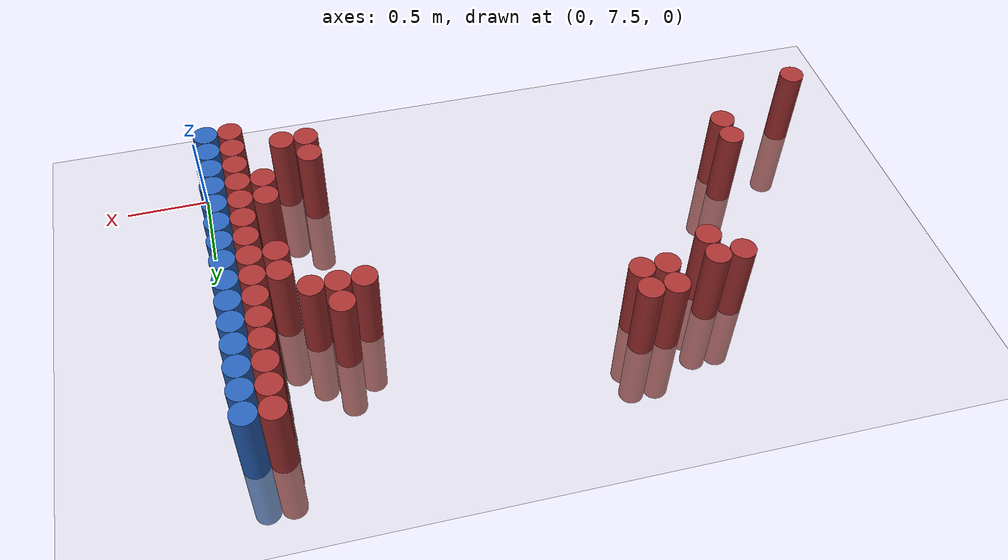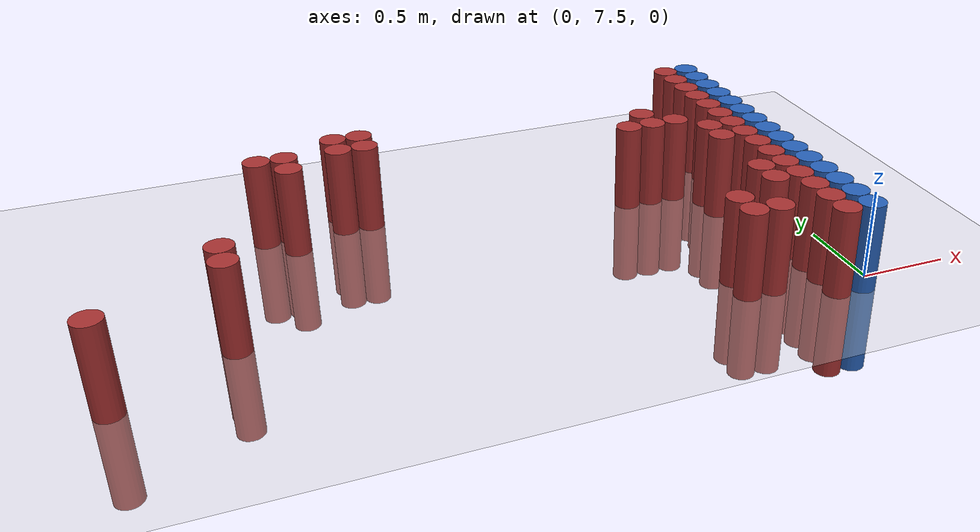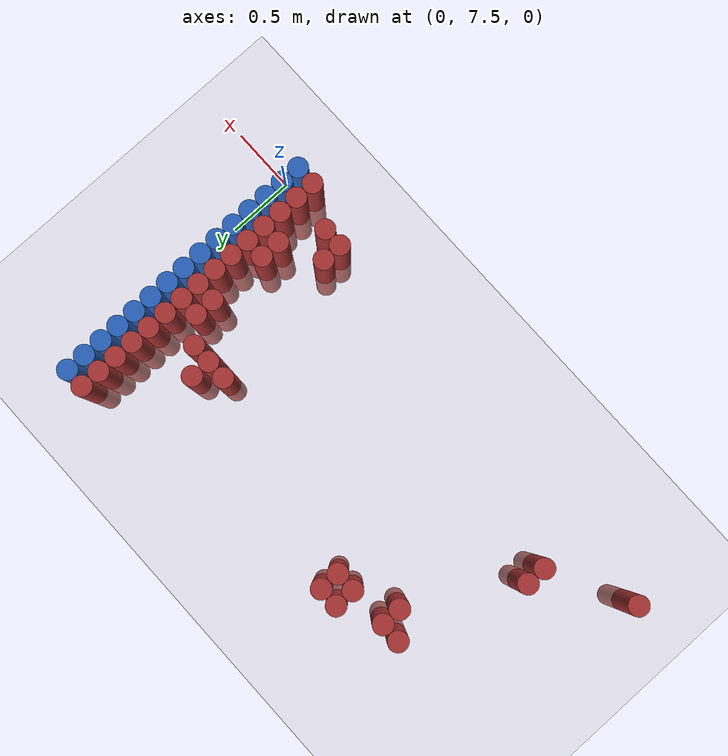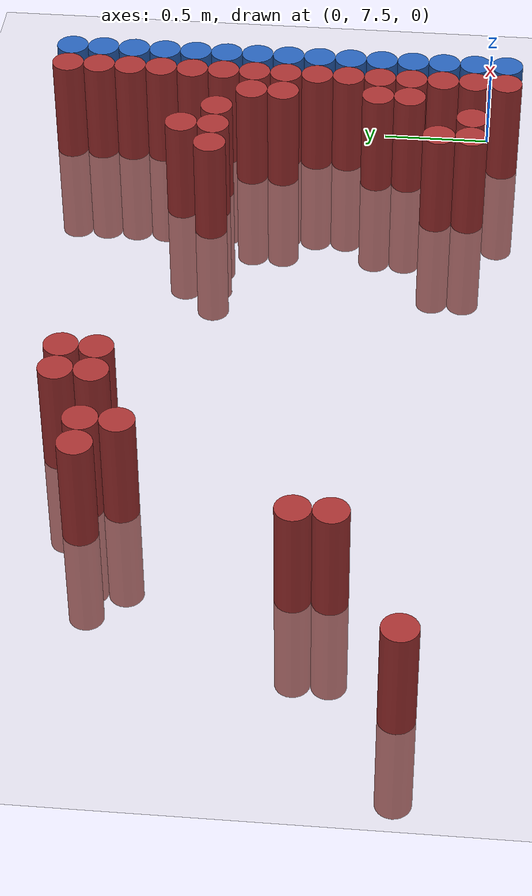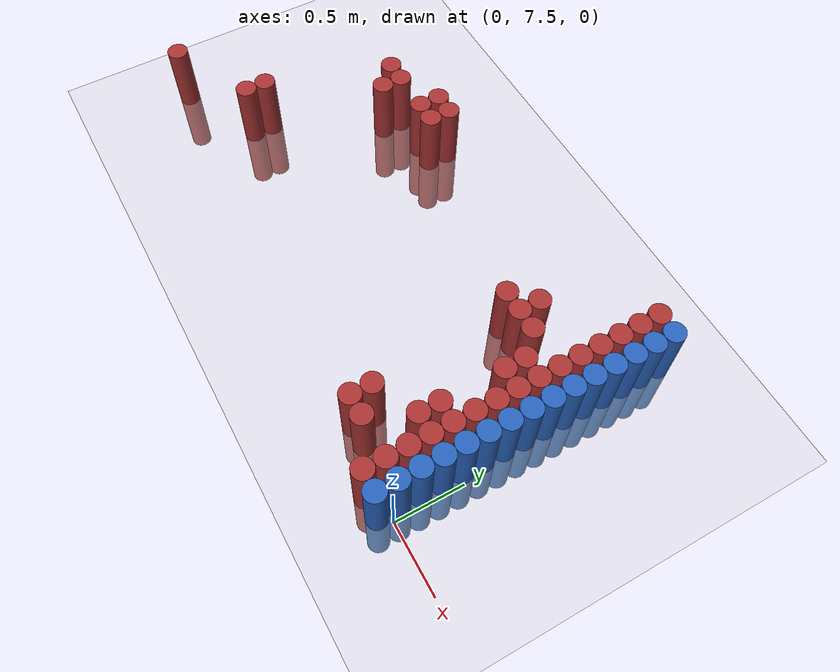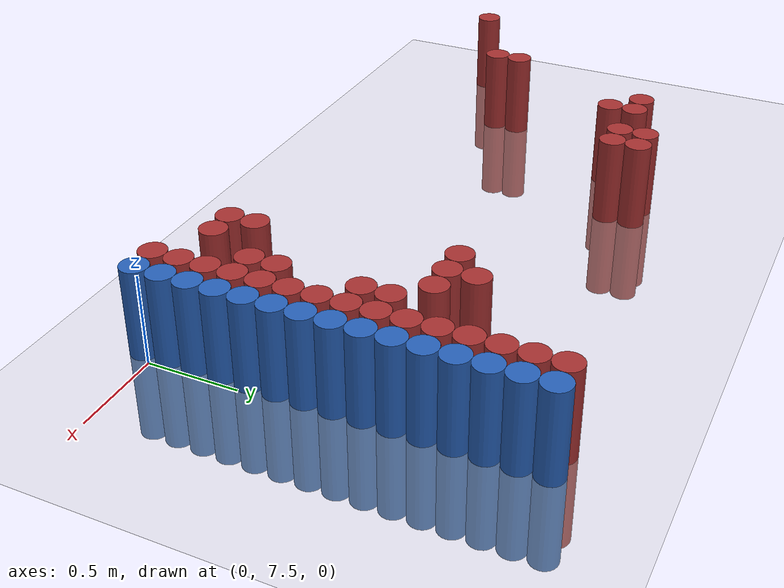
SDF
<sdf version="1.6">
 <world name="default">
  <model name="ground_plane">
   <static>1</static>
   <link name="link">
    <collision name="collision">
     <geometry><plane><normal>0 0 1</normal><size>100 100</size></plane></geometry>
     <surface><friction><ode><mu>100</mu><mu2>50</mu2></ode></friction></surface>
    </collision>
    <visual name="visual">
     <cast_shadows>0</cast_shadows>
     <geometry><plane><normal>0 0 1</normal><size>100 100</size></plane></geometry>
     <material>
      <script><uri>file://media/materials/scripts/gazebo.material</uri><name>Gazebo/Grey</name></script>
     </material>
    </visual>
   </link>
  </model>
  <model name="unit_cylinder_155">
   <static>1</static>
   <pose>-3.825000 7.725000 0.000000 0.000000 0.000000 0.000000</pose>
   <link name="link">
    <inertial>
     <mass>1</mass>
     <inertia><ixx>0.145833</ixx><ixy>0</ixy><ixz>0</ixz><iyy>0.145833</iyy><iyz>0</iyz><izz>0.125</izz></inertia>
    </inertial>
    <collision name="collision">
     <geometry><cylinder><radius>0.075000</radius><length>1</length></cylinder></geometry>
    </collision>
    <visual name="visual">
     <geometry><cylinder><radius>0.075000</radius><length>1</length></cylinder></geometry>
     <material>
      <ambient>0.648000 0.192000 0.192000 1</ambient>
      <diffuse>0.648000 0.192000 0.192000 1</diffuse>
     </material>
     <material>
      <script><name>Gazebo/Grey</name><uri>file://media/materials/scripts/gazebo.material</uri></script>
     </material>
    </visual>
   </link>
  </model>
  <model name="unit_cylinder_169">
   <static>1</static>
   <pose>-3.225000 8.025000 0.000000 0.000000 0.000000 0.000000</pose>
   <link name="link">
    <inertial>
     <mass>1</mass>
     <inertia><ixx>0.145833</ixx><ixy>0</ixy><ixz>0</ixz><iyy>0.145833</iyy><iyz>0</iyz><izz>0.125</izz></inertia>
    </inertial>
    <collision name="collision">
     <geometry><cylinder><radius>0.075000</radius><length>1</length></cylinder></geometry>
    </collision>
    <visual name="visual">
     <geometry><cylinder><radius>0.075000</radius><length>1</length></cylinder></geometry>
     <material>
      <ambient>0.648000 0.192000 0.192000 1</ambient>
      <diffuse>0.648000 0.192000 0.192000 1</diffuse>
     </material>
     <material>
      <script><name>Gazebo/Grey</name><uri>file://media/materials/scripts/gazebo.material</uri></script>
     </material>
    </visual>
   </link>
  </model>
  <model name="unit_cylinder_170">
   <static>1</static>
   <pose>-3.225000 8.175000 0.000000 0.000000 0.000000 0.000000</pose>
   <link name="link">
    <inertial>
     <mass>1</mass>
     <inertia><ixx>0.145833</ixx><ixy>0</ixy><ixz>0</ixz><iyy>0.145833</iyy><iyz>0</iyz><izz>0.125</izz></inertia>
    </inertial>
    <collision name="collision">
     <geometry><cylinder><radius>0.075000</radius><length>1</length></cylinder></geometry>
    </collision>
    <visual name="visual">
     <geometry><cylinder><radius>0.075000</radius><length>1</length></cylinder></geometry>
     <material>
      <ambient>0.648000 0.192000 0.192000 1</ambient>
      <diffuse>0.648000 0.192000 0.192000 1</diffuse>
     </material>
     <material>
      <script><name>Gazebo/Grey</name><uri>file://media/materials/scripts/gazebo.material</uri></script>
     </material>
    </visual>
   </link>
  </model>
  <model name="unit_cylinder_172">
   <static>1</static>
   <pose>-2.925000 9.075000 0.000000 0.000000 0.000000 0.000000</pose>
   <link name="link">
    <inertial>
     <mass>1</mass>
     <inertia><ixx>0.145833</ixx><ixy>0</ixy><ixz>0</ixz><iyy>0.145833</iyy><iyz>0</iyz><izz>0.125</izz></inertia>
    </inertial>
    <collision name="collision">
     <geometry><cylinder><radius>0.075000</radius><length>1</length></cylinder></geometry>
    </collision>
    <visual name="visual">
     <geometry><cylinder><radius>0.075000</radius><length>1</length></cylinder></geometry>
     <material>
      <ambient>0.648000 0.192000 0.192000 1</ambient>
      <diffuse>0.648000 0.192000 0.192000 1</diffuse>
     </material>
     <material>
      <script><name>Gazebo/Grey</name><uri>file://media/materials/scripts/gazebo.material</uri></script>
     </material>
    </visual>
   </link>
  </model>
  <model name="unit_cylinder_173">
   <static>1</static>
   <pose>-2.775000 8.925000 0.000000 0.000000 0.000000 0.000000</pose>
   <link name="link">
    <inertial>
     <mass>1</mass>
     <inertia><ixx>0.145833</ixx><ixy>0</ixy><ixz>0</ixz><iyy>0.145833</iyy><iyz>0</iyz><izz>0.125</izz></inertia>
    </inertial>
    <collision name="collision">
     <geometry><cylinder><radius>0.075000</radius><length>1</length></cylinder></geometry>
    </collision>
    <visual name="visual">
     <geometry><cylinder><radius>0.075000</radius><length>1</length></cylinder></geometry>
     <material>
      <ambient>0.648000 0.192000 0.192000 1</ambient>
      <diffuse>0.648000 0.192000 0.192000 1</diffuse>
     </material>
     <material>
      <script><name>Gazebo/Grey</name><uri>file://media/materials/scripts/gazebo.material</uri></script>
     </material>
    </visual>
   </link>
  </model>
  <model name="unit_cylinder_174">
   <static>1</static>
   <pose>-2.775000 9.075000 0.000000 0.000000 0.000000 0.000000</pose>
   <link name="link">
    <inertial>
     <mass>1</mass>
     <inertia><ixx>0.145833</ixx><ixy>0</ixy><ixz>0</ixz><iyy>0.145833</iyy><iyz>0</iyz><izz>0.125</izz></inertia>
    </inertial>
    <collision name="collision">
     <geometry><cylinder><radius>0.075000</radius><length>1</length></cylinder></geometry>
    </collision>
    <visual name="visual">
     <geometry><cylinder><radius>0.075000</radius><length>1</length></cylinder></geometry>
     <material>
      <ambient>0.648000 0.192000 0.192000 1</ambient>
      <diffuse>0.648000 0.192000 0.192000 1</diffuse>
     </material>
     <material>
      <script><name>Gazebo/Grey</name><uri>file://media/materials/scripts/gazebo.material</uri></script>
     </material>
    </visual>
   </link>
  </model>
  <model name="unit_cylinder_176">
   <static>1</static>
   <pose>-2.475000 9.075000 0.000000 0.000000 0.000000 0.000000</pose>
   <link name="link">
    <inertial>
     <mass>1</mass>
     <inertia><ixx>0.145833</ixx><ixy>0</ixy><ixz>0</ixz><iyy>0.145833</iyy><iyz>0</iyz><izz>0.125</izz></inertia>
    </inertial>
    <collision name="collision">
     <geometry><cylinder><radius>0.075000</radius><length>1</length></cylinder></geometry>
    </collision>
    <visual name="visual">
     <geometry><cylinder><radius>0.075000</radius><length>1</length></cylinder></geometry>
     <material>
      <ambient>0.648000 0.192000 0.192000 1</ambient>
      <diffuse>0.648000 0.192000 0.192000 1</diffuse>
     </material>
     <material>
      <script><name>Gazebo/Grey</name><uri>file://media/materials/scripts/gazebo.material</uri></script>
     </material>
    </visual>
   </link>
  </model>
  <model name="unit_cylinder_177">
   <static>1</static>
   <pose>-2.475000 9.225000 0.000000 0.000000 0.000000 0.000000</pose>
   <link name="link">
    <inertial>
     <mass>1</mass>
     <inertia><ixx>0.145833</ixx><ixy>0</ixy><ixz>0</ixz><iyy>0.145833</iyy><iyz>0</iyz><izz>0.125</izz></inertia>
    </inertial>
    <collision name="collision">
     <geometry><cylinder><radius>0.075000</radius><length>1</length></cylinder></geometry>
    </collision>
    <visual name="visual">
     <geometry><cylinder><radius>0.075000</radius><length>1</length></cylinder></geometry>
     <material>
      <ambient>0.648000 0.192000 0.192000 1</ambient>
      <diffuse>0.648000 0.192000 0.192000 1</diffuse>
     </material>
     <material>
      <script><name>Gazebo/Grey</name><uri>file://media/materials/scripts/gazebo.material</uri></script>
     </material>
    </visual>
   </link>
  </model>
  <model name="unit_cylinder_178">
   <static>1</static>
   <pose>-2.325000 9.075000 0.000000 0.000000 0.000000 0.000000</pose>
   <link name="link">
    <inertial>
     <mass>1</mass>
     <inertia><ixx>0.145833</ixx><ixy>0</ixy><ixz>0</ixz><iyy>0.145833</iyy><iyz>0</iyz><izz>0.125</izz></inertia>
    </inertial>
    <collision name="collision">
     <geometry><cylinder><radius>0.075000</radius><length>1</length></cylinder></geometry>
    </collision>
    <visual name="visual">
     <geometry><cylinder><radius>0.075000</radius><length>1</length></cylinder></geometry>
     <material>
      <ambient>0.648000 0.192000 0.192000 1</ambient>
      <diffuse>0.648000 0.192000 0.192000 1</diffuse>
     </material>
     <material>
      <script><name>Gazebo/Grey</name><uri>file://media/materials/scripts/gazebo.material</uri></script>
     </material>
    </visual>
   </link>
  </model>
  <model name="unit_cylinder_179">
   <static>1</static>
   <pose>-2.325000 9.225000 0.000000 0.000000 0.000000 0.000000</pose>
   <link name="link">
    <inertial>
     <mass>1</mass>
     <inertia><ixx>0.145833</ixx><ixy>0</ixy><ixz>0</ixz><iyy>0.145833</iyy><iyz>0</iyz><izz>0.125</izz></inertia>
    </inertial>
    <collision name="collision">
     <geometry><cylinder><radius>0.075000</radius><length>1</length></cylinder></geometry>
    </collision>
    <visual name="visual">
     <geometry><cylinder><radius>0.075000</radius><length>1</length></cylinder></geometry>
     <material>
      <ambient>0.648000 0.192000 0.192000 1</ambient>
      <diffuse>0.648000 0.192000 0.192000 1</diffuse>
     </material>
     <material>
      <script><name>Gazebo/Grey</name><uri>file://media/materials/scripts/gazebo.material</uri></script>
     </material>
    </visual>
   </link>
  </model>
  <model name="unit_cylinder_189">
   <static>1</static>
   <pose>-0.825000 8.775000 0.000000 0.000000 0.000000 0.000000</pose>
   <link name="link">
    <inertial>
     <mass>1</mass>
     <inertia><ixx>0.145833</ixx><ixy>0</ixy><ixz>0</ixz><iyy>0.145833</iyy><iyz>0</iyz><izz>0.125</izz></inertia>
    </inertial>
    <collision name="collision">
     <geometry><cylinder><radius>0.075000</radius><length>1</length></cylinder></geometry>
    </collision>
    <visual name="visual">
     <geometry><cylinder><radius>0.075000</radius><length>1</length></cylinder></geometry>
     <material>
      <ambient>0.648000 0.192000 0.192000 1</ambient>
      <diffuse>0.648000 0.192000 0.192000 1</diffuse>
     </material>
     <material>
      <script><name>Gazebo/Grey</name><uri>file://media/materials/scripts/gazebo.material</uri></script>
     </material>
    </visual>
   </link>
  </model>
  <model name="unit_cylinder_190">
   <static>1</static>
   <pose>-0.675000 7.575000 0.000000 0.000000 0.000000 0.000000</pose>
   <link name="link">
    <inertial>
     <mass>1</mass>
     <inertia><ixx>0.145833</ixx><ixy>0</ixy><ixz>0</ixz><iyy>0.145833</iyy><iyz>0</iyz><izz>0.125</izz></inertia>
    </inertial>
    <collision name="collision">
     <geometry><cylinder><radius>0.075000</radius><length>1</length></cylinder></geometry>
    </collision>
    <visual name="visual">
     <geometry><cylinder><radius>0.075000</radius><length>1</length></cylinder></geometry>
     <material>
      <ambient>0.648000 0.192000 0.192000 1</ambient>
      <diffuse>0.648000 0.192000 0.192000 1</diffuse>
     </material>
     <material>
      <script><name>Gazebo/Grey</name><uri>file://media/materials/scripts/gazebo.material</uri></script>
     </material>
    </visual>
   </link>
  </model>
  <model name="unit_cylinder_191">
   <static>1</static>
   <pose>-0.675000 7.725000 0.000000 0.000000 0.000000 0.000000</pose>
   <link name="link">
    <inertial>
     <mass>1</mass>
     <inertia><ixx>0.145833</ixx><ixy>0</ixy><ixz>0</ixz><iyy>0.145833</iyy><iyz>0</iyz><izz>0.125</izz></inertia>
    </inertial>
    <collision name="collision">
     <geometry><cylinder><radius>0.075000</radius><length>1</length></cylinder></geometry>
    </collision>
    <visual name="visual">
     <geometry><cylinder><radius>0.075000</radius><length>1</length></cylinder></geometry>
     <material>
      <ambient>0.648000 0.192000 0.192000 1</ambient>
      <diffuse>0.648000 0.192000 0.192000 1</diffuse>
     </material>
     <material>
      <script><name>Gazebo/Grey</name><uri>file://media/materials/scripts/gazebo.material</uri></script>
     </material>
    </visual>
   </link>
  </model>
  <model name="unit_cylinder_192">
   <static>1</static>
   <pose>-0.675000 8.775000 0.000000 0.000000 0.000000 0.000000</pose>
   <link name="link">
    <inertial>
     <mass>1</mass>
     <inertia><ixx>0.145833</ixx><ixy>0</ixy><ixz>0</ixz><iyy>0.145833</iyy><iyz>0</iyz><izz>0.125</izz></inertia>
    </inertial>
    <collision name="collision">
     <geometry><cylinder><radius>0.075000</radius><length>1</length></cylinder></geometry>
    </collision>
    <visual name="visual">
     <geometry><cylinder><radius>0.075000</radius><length>1</length></cylinder></geometry>
     <material>
      <ambient>0.648000 0.192000 0.192000 1</ambient>
      <diffuse>0.648000 0.192000 0.192000 1</diffuse>
     </material>
     <material>
      <script><name>Gazebo/Grey</name><uri>file://media/materials/scripts/gazebo.material</uri></script>
     </material>
    </visual>
   </link>
  </model>
  <model name="unit_cylinder_193">
   <static>1</static>
   <pose>-0.675000 8.925000 0.000000 0.000000 0.000000 0.000000</pose>
   <link name="link">
    <inertial>
     <mass>1</mass>
     <inertia><ixx>0.145833</ixx><ixy>0</ixy><ixz>0</ixz><iyy>0.145833</iyy><iyz>0</iyz><izz>0.125</izz></inertia>
    </inertial>
    <collision name="collision">
     <geometry><cylinder><radius>0.075000</radius><length>1</length></cylinder></geometry>
    </collision>
    <visual name="visual">
     <geometry><cylinder><radius>0.075000</radius><length>1</length></cylinder></geometry>
     <material>
      <ambient>0.648000 0.192000 0.192000 1</ambient>
      <diffuse>0.648000 0.192000 0.192000 1</diffuse>
     </material>
     <material>
      <script><name>Gazebo/Grey</name><uri>file://media/materials/scripts/gazebo.material</uri></script>
     </material>
    </visual>
   </link>
  </model>
  <model name="unit_cylinder_194">
   <static>1</static>
   <pose>-0.525000 7.575000 0.000000 0.000000 0.000000 0.000000</pose>
   <link name="link">
    <inertial>
     <mass>1</mass>
     <inertia><ixx>0.145833</ixx><ixy>0</ixy><ixz>0</ixz><iyy>0.145833</iyy><iyz>0</iyz><izz>0.125</izz></inertia>
    </inertial>
    <collision name="collision">
     <geometry><cylinder><radius>0.075000</radius><length>1</length></cylinder></geometry>
    </collision>
    <visual name="visual">
     <geometry><cylinder><radius>0.075000</radius><length>1</length></cylinder></geometry>
     <material>
      <ambient>0.648000 0.192000 0.192000 1</ambient>
      <diffuse>0.648000 0.192000 0.192000 1</diffuse>
     </material>
     <material>
      <script><name>Gazebo/Grey</name><uri>file://media/materials/scripts/gazebo.material</uri></script>
     </material>
    </visual>
   </link>
  </model>
  <model name="unit_cylinder_195">
   <static>1</static>
   <pose>-0.525000 8.775000 0.000000 0.000000 0.000000 0.000000</pose>
   <link name="link">
    <inertial>
     <mass>1</mass>
     <inertia><ixx>0.145833</ixx><ixy>0</ixy><ixz>0</ixz><iyy>0.145833</iyy><iyz>0</iyz><izz>0.125</izz></inertia>
    </inertial>
    <collision name="collision">
     <geometry><cylinder><radius>0.075000</radius><length>1</length></cylinder></geometry>
    </collision>
    <visual name="visual">
     <geometry><cylinder><radius>0.075000</radius><length>1</length></cylinder></geometry>
     <material>
      <ambient>0.648000 0.192000 0.192000 1</ambient>
      <diffuse>0.648000 0.192000 0.192000 1</diffuse>
     </material>
     <material>
      <script><name>Gazebo/Grey</name><uri>file://media/materials/scripts/gazebo.material</uri></script>
     </material>
    </visual>
   </link>
  </model>
  <model name="unit_cylinder_197">
   <static>1</static>
   <pose>-0.375000 7.875000 0.000000 0.000000 0.000000 0.000000</pose>
   <link name="link">
    <inertial>
     <mass>1</mass>
     <inertia><ixx>0.145833</ixx><ixy>0</ixy><ixz>0</ixz><iyy>0.145833</iyy><iyz>0</iyz><izz>0.125</izz></inertia>
    </inertial>
    <collision name="collision">
     <geometry><cylinder><radius>0.075000</radius><length>1</length></cylinder></geometry>
    </collision>
    <visual name="visual">
     <geometry><cylinder><radius>0.075000</radius><length>1</length></cylinder></geometry>
     <material>
      <ambient>0.648000 0.192000 0.192000 1</ambient>
      <diffuse>0.648000 0.192000 0.192000 1</diffuse>
     </material>
     <material>
      <script><name>Gazebo/Grey</name><uri>file://media/materials/scripts/gazebo.material</uri></script>
     </material>
    </visual>
   </link>
  </model>
  <model name="unit_cylinder_198">
   <static>1</static>
   <pose>-0.375000 8.025000 0.000000 0.000000 0.000000 0.000000</pose>
   <link name="link">
    <inertial>
     <mass>1</mass>
     <inertia><ixx>0.145833</ixx><ixy>0</ixy><ixz>0</ixz><iyy>0.145833</iyy><iyz>0</iyz><izz>0.125</izz></inertia>
    </inertial>
    <collision name="collision">
     <geometry><cylinder><radius>0.075000</radius><length>1</length></cylinder></geometry>
    </collision>
    <visual name="visual">
     <geometry><cylinder><radius>0.075000</radius><length>1</length></cylinder></geometry>
     <material>
      <ambient>0.648000 0.192000 0.192000 1</ambient>
      <diffuse>0.648000 0.192000 0.192000 1</diffuse>
     </material>
     <material>
      <script><name>Gazebo/Grey</name><uri>file://media/materials/scripts/gazebo.material</uri></script>
     </material>
    </visual>
   </link>
  </model>
  <model name="unit_cylinder_199">
   <static>1</static>
   <pose>-0.375000 8.475000 0.000000 0.000000 0.000000 0.000000</pose>
   <link name="link">
    <inertial>
     <mass>1</mass>
     <inertia><ixx>0.145833</ixx><ixy>0</ixy><ixz>0</ixz><iyy>0.145833</iyy><iyz>0</iyz><izz>0.125</izz></inertia>
    </inertial>
    <collision name="collision">
     <geometry><cylinder><radius>0.075000</radius><length>1</length></cylinder></geometry>
    </collision>
    <visual name="visual">
     <geometry><cylinder><radius>0.075000</radius><length>1</length></cylinder></geometry>
     <material>
      <ambient>0.648000 0.192000 0.192000 1</ambient>
      <diffuse>0.648000 0.192000 0.192000 1</diffuse>
     </material>
     <material>
      <script><name>Gazebo/Grey</name><uri>file://media/materials/scripts/gazebo.material</uri></script>
     </material>
    </visual>
   </link>
  </model>
  <model name="unit_cylinder_200">
   <static>1</static>
   <pose>-0.375000 8.625000 0.000000 0.000000 0.000000 0.000000</pose>
   <link name="link">
    <inertial>
     <mass>1</mass>
     <inertia><ixx>0.145833</ixx><ixy>0</ixy><ixz>0</ixz><iyy>0.145833</iyy><iyz>0</iyz><izz>0.125</izz></inertia>
    </inertial>
    <collision name="collision">
     <geometry><cylinder><radius>0.075000</radius><length>1</length></cylinder></geometry>
    </collision>
    <visual name="visual">
     <geometry><cylinder><radius>0.075000</radius><length>1</length></cylinder></geometry>
     <material>
      <ambient>0.648000 0.192000 0.192000 1</ambient>
      <diffuse>0.648000 0.192000 0.192000 1</diffuse>
     </material>
     <material>
      <script><name>Gazebo/Grey</name><uri>file://media/materials/scripts/gazebo.material</uri></script>
     </material>
    </visual>
   </link>
  </model>
  <model name="unit_cylinder_210">
   <static>1</static>
   <pose>-0.225000 7.425000 0.000000 0.000000 0.000000 0.000000</pose>
   <link name="link">
    <inertial>
     <mass>1</mass>
     <inertia><ixx>0.145833</ixx><ixy>0</ixy><ixz>0</ixz><iyy>0.145833</iyy><iyz>0</iyz><izz>0.125</izz></inertia>
    </inertial>
    <collision name="collision">
     <geometry><cylinder><radius>0.075000</radius><length>1</length></cylinder></geometry>
    </collision>
    <visual name="visual">
     <geometry><cylinder><radius>0.075000</radius><length>1</length></cylinder></geometry>
     <material>
      <ambient>0.648000 0.192000 0.192000 1</ambient>
      <diffuse>0.648000 0.192000 0.192000 1</diffuse>
     </material>
     <material>
      <script><name>Gazebo/Grey</name><uri>file://media/materials/scripts/gazebo.material</uri></script>
     </material>
    </visual>
   </link>
  </model>
  <model name="unit_cylinder_211">
   <static>1</static>
   <pose>-0.225000 7.575000 0.000000 0.000000 0.000000 0.000000</pose>
   <link name="link">
    <inertial>
     <mass>1</mass>
     <inertia><ixx>0.145833</ixx><ixy>0</ixy><ixz>0</ixz><iyy>0.145833</iyy><iyz>0</iyz><izz>0.125</izz></inertia>
    </inertial>
    <collision name="collision">
     <geometry><cylinder><radius>0.075000</radius><length>1</length></cylinder></geometry>
    </collision>
    <visual name="visual">
     <geometry><cylinder><radius>0.075000</radius><length>1</length></cylinder></geometry>
     <material>
      <ambient>0.648000 0.192000 0.192000 1</ambient>
      <diffuse>0.648000 0.192000 0.192000 1</diffuse>
     </material>
     <material>
      <script><name>Gazebo/Grey</name><uri>file://media/materials/scripts/gazebo.material</uri></script>
     </material>
    </visual>
   </link>
  </model>
  <model name="unit_cylinder_212">
   <static>1</static>
   <pose>-0.225000 7.725000 0.000000 0.000000 0.000000 0.000000</pose>
   <link name="link">
    <inertial>
     <mass>1</mass>
     <inertia><ixx>0.145833</ixx><ixy>0</ixy><ixz>0</ixz><iyy>0.145833</iyy><iyz>0</iyz><izz>0.125</izz></inertia>
    </inertial>
    <collision name="collision">
     <geometry><cylinder><radius>0.075000</radius><length>1</length></cylinder></geometry>
    </collision>
    <visual name="visual">
     <geometry><cylinder><radius>0.075000</radius><length>1</length></cylinder></geometry>
     <material>
      <ambient>0.648000 0.192000 0.192000 1</ambient>
      <diffuse>0.648000 0.192000 0.192000 1</diffuse>
     </material>
     <material>
      <script><name>Gazebo/Grey</name><uri>file://media/materials/scripts/gazebo.material</uri></script>
     </material>
    </visual>
   </link>
  </model>
  <model name="unit_cylinder_213">
   <static>1</static>
   <pose>-0.225000 7.875000 0.000000 0.000000 0.000000 0.000000</pose>
   <link name="link">
    <inertial>
     <mass>1</mass>
     <inertia><ixx>0.145833</ixx><ixy>0</ixy><ixz>0</ixz><iyy>0.145833</iyy><iyz>0</iyz><izz>0.125</izz></inertia>
    </inertial>
    <collision name="collision">
     <geometry><cylinder><radius>0.075000</radius><length>1</length></cylinder></geometry>
    </collision>
    <visual name="visual">
     <geometry><cylinder><radius>0.075000</radius><length>1</length></cylinder></geometry>
     <material>
      <ambient>0.648000 0.192000 0.192000 1</ambient>
      <diffuse>0.648000 0.192000 0.192000 1</diffuse>
     </material>
     <material>
      <script><name>Gazebo/Grey</name><uri>file://media/materials/scripts/gazebo.material</uri></script>
     </material>
    </visual>
   </link>
  </model>
  <model name="unit_cylinder_214">
   <static>1</static>
   <pose>-0.225000 8.025000 0.000000 0.000000 0.000000 0.000000</pose>
   <link name="link">
    <inertial>
     <mass>1</mass>
     <inertia><ixx>0.145833</ixx><ixy>0</ixy><ixz>0</ixz><iyy>0.145833</iyy><iyz>0</iyz><izz>0.125</izz></inertia>
    </inertial>
    <collision name="collision">
     <geometry><cylinder><radius>0.075000</radius><length>1</length></cylinder></geometry>
    </collision>
    <visual name="visual">
     <geometry><cylinder><radius>0.075000</radius><length>1</length></cylinder></geometry>
     <material>
      <ambient>0.648000 0.192000 0.192000 1</ambient>
      <diffuse>0.648000 0.192000 0.192000 1</diffuse>
     </material>
     <material>
      <script><name>Gazebo/Grey</name><uri>file://media/materials/scripts/gazebo.material</uri></script>
     </material>
    </visual>
   </link>
  </model>
  <model name="unit_cylinder_215">
   <static>1</static>
   <pose>-0.225000 8.175000 0.000000 0.000000 0.000000 0.000000</pose>
   <link name="link">
    <inertial>
     <mass>1</mass>
     <inertia><ixx>0.145833</ixx><ixy>0</ixy><ixz>0</ixz><iyy>0.145833</iyy><iyz>0</iyz><izz>0.125</izz></inertia>
    </inertial>
    <collision name="collision">
     <geometry><cylinder><radius>0.075000</radius><length>1</length></cylinder></geometry>
    </collision>
    <visual name="visual">
     <geometry><cylinder><radius>0.075000</radius><length>1</length></cylinder></geometry>
     <material>
      <ambient>0.648000 0.192000 0.192000 1</ambient>
      <diffuse>0.648000 0.192000 0.192000 1</diffuse>
     </material>
     <material>
      <script><name>Gazebo/Grey</name><uri>file://media/materials/scripts/gazebo.material</uri></script>
     </material>
    </visual>
   </link>
  </model>
  <model name="unit_cylinder_216">
   <static>1</static>
   <pose>-0.225000 8.325000 0.000000 0.000000 0.000000 0.000000</pose>
   <link name="link">
    <inertial>
     <mass>1</mass>
     <inertia><ixx>0.145833</ixx><ixy>0</ixy><ixz>0</ixz><iyy>0.145833</iyy><iyz>0</iyz><izz>0.125</izz></inertia>
    </inertial>
    <collision name="collision">
     <geometry><cylinder><radius>0.075000</radius><length>1</length></cylinder></geometry>
    </collision>
    <visual name="visual">
     <geometry><cylinder><radius>0.075000</radius><length>1</length></cylinder></geometry>
     <material>
      <ambient>0.648000 0.192000 0.192000 1</ambient>
      <diffuse>0.648000 0.192000 0.192000 1</diffuse>
     </material>
     <material>
      <script><name>Gazebo/Grey</name><uri>file://media/materials/scripts/gazebo.material</uri></script>
     </material>
    </visual>
   </link>
  </model>
  <model name="unit_cylinder_217">
   <static>1</static>
   <pose>-0.225000 8.475000 0.000000 0.000000 0.000000 0.000000</pose>
   <link name="link">
    <inertial>
     <mass>1</mass>
     <inertia><ixx>0.145833</ixx><ixy>0</ixy><ixz>0</ixz><iyy>0.145833</iyy><iyz>0</iyz><izz>0.125</izz></inertia>
    </inertial>
    <collision name="collision">
     <geometry><cylinder><radius>0.075000</radius><length>1</length></cylinder></geometry>
    </collision>
    <visual name="visual">
     <geometry><cylinder><radius>0.075000</radius><length>1</length></cylinder></geometry>
     <material>
      <ambient>0.648000 0.192000 0.192000 1</ambient>
      <diffuse>0.648000 0.192000 0.192000 1</diffuse>
     </material>
     <material>
      <script><name>Gazebo/Grey</name><uri>file://media/materials/scripts/gazebo.material</uri></script>
     </material>
    </visual>
   </link>
  </model>
  <model name="unit_cylinder_218">
   <static>1</static>
   <pose>-0.225000 8.625000 0.000000 0.000000 0.000000 0.000000</pose>
   <link name="link">
    <inertial>
     <mass>1</mass>
     <inertia><ixx>0.145833</ixx><ixy>0</ixy><ixz>0</ixz><iyy>0.145833</iyy><iyz>0</iyz><izz>0.125</izz></inertia>
    </inertial>
    <collision name="collision">
     <geometry><cylinder><radius>0.075000</radius><length>1</length></cylinder></geometry>
    </collision>
    <visual name="visual">
     <geometry><cylinder><radius>0.075000</radius><length>1</length></cylinder></geometry>
     <material>
      <ambient>0.648000 0.192000 0.192000 1</ambient>
      <diffuse>0.648000 0.192000 0.192000 1</diffuse>
     </material>
     <material>
      <script><name>Gazebo/Grey</name><uri>file://media/materials/scripts/gazebo.material</uri></script>
     </material>
    </visual>
   </link>
  </model>
  <model name="unit_cylinder_219">
   <static>1</static>
   <pose>-0.225000 8.775000 0.000000 0.000000 0.000000 0.000000</pose>
   <link name="link">
    <inertial>
     <mass>1</mass>
     <inertia><ixx>0.145833</ixx><ixy>0</ixy><ixz>0</ixz><iyy>0.145833</iyy><iyz>0</iyz><izz>0.125</izz></inertia>
    </inertial>
    <collision name="collision">
     <geometry><cylinder><radius>0.075000</radius><length>1</length></cylinder></geometry>
    </collision>
    <visual name="visual">
     <geometry><cylinder><radius>0.075000</radius><length>1</length></cylinder></geometry>
     <material>
      <ambient>0.648000 0.192000 0.192000 1</ambient>
      <diffuse>0.648000 0.192000 0.192000 1</diffuse>
     </material>
     <material>
      <script><name>Gazebo/Grey</name><uri>file://media/materials/scripts/gazebo.material</uri></script>
     </material>
    </visual>
   </link>
  </model>
  <model name="unit_cylinder_220">
   <static>1</static>
   <pose>-0.225000 8.925000 0.000000 0.000000 0.000000 0.000000</pose>
   <link name="link">
    <inertial>
     <mass>1</mass>
     <inertia><ixx>0.145833</ixx><ixy>0</ixy><ixz>0</ixz><iyy>0.145833</iyy><iyz>0</iyz><izz>0.125</izz></inertia>
    </inertial>
    <collision name="collision">
     <geometry><cylinder><radius>0.075000</radius><length>1</length></cylinder></geometry>
    </collision>
    <visual name="visual">
     <geometry><cylinder><radius>0.075000</radius><length>1</length></cylinder></geometry>
     <material>
      <ambient>0.648000 0.192000 0.192000 1</ambient>
      <diffuse>0.648000 0.192000 0.192000 1</diffuse>
     </material>
     <material>
      <script><name>Gazebo/Grey</name><uri>file://media/materials/scripts/gazebo.material</uri></script>
     </material>
    </visual>
   </link>
  </model>
  <model name="unit_cylinder_221">
   <static>1</static>
   <pose>-0.225000 9.075000 0.000000 0.000000 0.000000 0.000000</pose>
   <link name="link">
    <inertial>
     <mass>1</mass>
     <inertia><ixx>0.145833</ixx><ixy>0</ixy><ixz>0</ixz><iyy>0.145833</iyy><iyz>0</iyz><izz>0.125</izz></inertia>
    </inertial>
    <collision name="collision">
     <geometry><cylinder><radius>0.075000</radius><length>1</length></cylinder></geometry>
    </collision>
    <visual name="visual">
     <geometry><cylinder><radius>0.075000</radius><length>1</length></cylinder></geometry>
     <material>
      <ambient>0.648000 0.192000 0.192000 1</ambient>
      <diffuse>0.648000 0.192000 0.192000 1</diffuse>
     </material>
     <material>
      <script><name>Gazebo/Grey</name><uri>file://media/materials/scripts/gazebo.material</uri></script>
     </material>
    </visual>
   </link>
  </model>
  <model name="unit_cylinder_222">
   <static>1</static>
   <pose>-0.225000 9.225000 0.000000 0.000000 0.000000 0.000000</pose>
   <link name="link">
    <inertial>
     <mass>1</mass>
     <inertia><ixx>0.145833</ixx><ixy>0</ixy><ixz>0</ixz><iyy>0.145833</iyy><iyz>0</iyz><izz>0.125</izz></inertia>
    </inertial>
    <collision name="collision">
     <geometry><cylinder><radius>0.075000</radius><length>1</length></cylinder></geometry>
    </collision>
    <visual name="visual">
     <geometry><cylinder><radius>0.075000</radius><length>1</length></cylinder></geometry>
     <material>
      <ambient>0.648000 0.192000 0.192000 1</ambient>
      <diffuse>0.648000 0.192000 0.192000 1</diffuse>
     </material>
     <material>
      <script><name>Gazebo/Grey</name><uri>file://media/materials/scripts/gazebo.material</uri></script>
     </material>
    </visual>
   </link>
  </model>
  <model name="unit_cylinder_223">
   <static>1</static>
   <pose>-0.225000 9.375000 0.000000 0.000000 0.000000 0.000000</pose>
   <link name="link">
    <inertial>
     <mass>1</mass>
     <inertia><ixx>0.145833</ixx><ixy>0</ixy><ixz>0</ixz><iyy>0.145833</iyy><iyz>0</iyz><izz>0.125</izz></inertia>
    </inertial>
    <collision name="collision">
     <geometry><cylinder><radius>0.075000</radius><length>1</length></cylinder></geometry>
    </collision>
    <visual name="visual">
     <geometry><cylinder><radius>0.075000</radius><length>1</length></cylinder></geometry>
     <material>
      <ambient>0.648000 0.192000 0.192000 1</ambient>
      <diffuse>0.648000 0.192000 0.192000 1</diffuse>
     </material>
     <material>
      <script><name>Gazebo/Grey</name><uri>file://media/materials/scripts/gazebo.material</uri></script>
     </material>
    </visual>
   </link>
  </model>
  <model name="unit_cylinder_224">
   <static>1</static>
   <pose>-0.225000 9.525000 0.000000 0.000000 0.000000 0.000000</pose>
   <link name="link">
    <inertial>
     <mass>1</mass>
     <inertia><ixx>0.145833</ixx><ixy>0</ixy><ixz>0</ixz><iyy>0.145833</iyy><iyz>0</iyz><izz>0.125</izz></inertia>
    </inertial>
    <collision name="collision">
     <geometry><cylinder><radius>0.075000</radius><length>1</length></cylinder></geometry>
    </collision>
    <visual name="visual">
     <geometry><cylinder><radius>0.075000</radius><length>1</length></cylinder></geometry>
     <material>
      <ambient>0.648000 0.192000 0.192000 1</ambient>
      <diffuse>0.648000 0.192000 0.192000 1</diffuse>
     </material>
     <material>
      <script><name>Gazebo/Grey</name><uri>file://media/materials/scripts/gazebo.material</uri></script>
     </material>
    </visual>
   </link>
  </model>
  <model name="unit_cylinder_240">
   <static>1</static>
   <pose>-0.075000 7.425000 0.000000 0.000000 0.000000 0.000000</pose>
   <link name="link">
    <inertial>
     <mass>1</mass>
     <inertia><ixx>0.145833</ixx><ixy>0</ixy><ixz>0</ixz><iyy>0.145833</iyy><iyz>0</iyz><izz>0.125</izz></inertia>
    </inertial>
    <collision name="collision">
     <geometry><cylinder><radius>0.075000</radius><length>1</length></cylinder></geometry>
    </collision>
    <visual name="visual">
     <geometry><cylinder><radius>0.075000</radius><length>1</length></cylinder></geometry>
     <material>
      <ambient>0.152000 0.379000 0.720000 1</ambient>
      <diffuse>0.152000 0.379000 0.720000 1</diffuse>
     </material>
     <material>
      <script><name>Gazebo/Grey</name><uri>file://media/materials/scripts/gazebo.material</uri></script>
     </material>
    </visual>
   </link>
  </model>
  <model name="unit_cylinder_241">
   <static>1</static>
   <pose>-0.075000 7.575000 0.000000 0.000000 0.000000 0.000000</pose>
   <link name="link">
    <inertial>
     <mass>1</mass>
     <inertia><ixx>0.145833</ixx><ixy>0</ixy><ixz>0</ixz><iyy>0.145833</iyy><iyz>0</iyz><izz>0.125</izz></inertia>
    </inertial>
    <collision name="collision">
     <geometry><cylinder><radius>0.075000</radius><length>1</length></cylinder></geometry>
    </collision>
    <visual name="visual">
     <geometry><cylinder><radius>0.075000</radius><length>1</length></cylinder></geometry>
     <material>
      <ambient>0.152000 0.379000 0.720000 1</ambient>
      <diffuse>0.152000 0.379000 0.720000 1</diffuse>
     </material>
     <material>
      <script><name>Gazebo/Grey</name><uri>file://media/materials/scripts/gazebo.material</uri></script>
     </material>
    </visual>
   </link>
  </model>
  <model name="unit_cylinder_242">
   <static>1</static>
   <pose>-0.075000 7.725000 0.000000 0.000000 0.000000 0.000000</pose>
   <link name="link">
    <inertial>
     <mass>1</mass>
     <inertia><ixx>0.145833</ixx><ixy>0</ixy><ixz>0</ixz><iyy>0.145833</iyy><iyz>0</iyz><izz>0.125</izz></inertia>
    </inertial>
    <collision name="collision">
     <geometry><cylinder><radius>0.075000</radius><length>1</length></cylinder></geometry>
    </collision>
    <visual name="visual">
     <geometry><cylinder><radius>0.075000</radius><length>1</length></cylinder></geometry>
     <material>
      <ambient>0.152000 0.379000 0.720000 1</ambient>
      <diffuse>0.152000 0.379000 0.720000 1</diffuse>
     </material>
     <material>
      <script><name>Gazebo/Grey</name><uri>file://media/materials/scripts/gazebo.material</uri></script>
     </material>
    </visual>
   </link>
  </model>
  <model name="unit_cylinder_243">
   <static>1</static>
   <pose>-0.075000 7.875000 0.000000 0.000000 0.000000 0.000000</pose>
   <link name="link">
    <inertial>
     <mass>1</mass>
     <inertia><ixx>0.145833</ixx><ixy>0</ixy><ixz>0</ixz><iyy>0.145833</iyy><iyz>0</iyz><izz>0.125</izz></inertia>
    </inertial>
    <collision name="collision">
     <geometry><cylinder><radius>0.075000</radius><length>1</length></cylinder></geometry>
    </collision>
    <visual name="visual">
     <geometry><cylinder><radius>0.075000</radius><length>1</length></cylinder></geometry>
     <material>
      <ambient>0.152000 0.379000 0.720000 1</ambient>
      <diffuse>0.152000 0.379000 0.720000 1</diffuse>
     </material>
     <material>
      <script><name>Gazebo/Grey</name><uri>file://media/materials/scripts/gazebo.material</uri></script>
     </material>
    </visual>
   </link>
  </model>
  <model name="unit_cylinder_244">
   <static>1</static>
   <pose>-0.075000 8.025000 0.000000 0.000000 0.000000 0.000000</pose>
   <link name="link">
    <inertial>
     <mass>1</mass>
     <inertia><ixx>0.145833</ixx><ixy>0</ixy><ixz>0</ixz><iyy>0.145833</iyy><iyz>0</iyz><izz>0.125</izz></inertia>
    </inertial>
    <collision name="collision">
     <geometry><cylinder><radius>0.075000</radius><length>1</length></cylinder></geometry>
    </collision>
    <visual name="visual">
     <geometry><cylinder><radius>0.075000</radius><length>1</length></cylinder></geometry>
     <material>
      <ambient>0.152000 0.379000 0.720000 1</ambient>
      <diffuse>0.152000 0.379000 0.720000 1</diffuse>
     </material>
     <material>
      <script><name>Gazebo/Grey</name><uri>file://media/materials/scripts/gazebo.material</uri></script>
     </material>
    </visual>
   </link>
  </model>
  <model name="unit_cylinder_245">
   <static>1</static>
   <pose>-0.075000 8.175000 0.000000 0.000000 0.000000 0.000000</pose>
   <link name="link">
    <inertial>
     <mass>1</mass>
     <inertia><ixx>0.145833</ixx><ixy>0</ixy><ixz>0</ixz><iyy>0.145833</iyy><iyz>0</iyz><izz>0.125</izz></inertia>
    </inertial>
    <collision name="collision">
     <geometry><cylinder><radius>0.075000</radius><length>1</length></cylinder></geometry>
    </collision>
    <visual name="visual">
     <geometry><cylinder><radius>0.075000</radius><length>1</length></cylinder></geometry>
     <material>
      <ambient>0.152000 0.379000 0.720000 1</ambient>
      <diffuse>0.152000 0.379000 0.720000 1</diffuse>
     </material>
     <material>
      <script><name>Gazebo/Grey</name><uri>file://media/materials/scripts/gazebo.material</uri></script>
     </material>
    </visual>
   </link>
  </model>
  <model name="unit_cylinder_246">
   <static>1</static>
   <pose>-0.075000 8.325000 0.000000 0.000000 0.000000 0.000000</pose>
   <link name="link">
    <inertial>
     <mass>1</mass>
     <inertia><ixx>0.145833</ixx><ixy>0</ixy><ixz>0</ixz><iyy>0.145833</iyy><iyz>0</iyz><izz>0.125</izz></inertia>
    </inertial>
    <collision name="collision">
     <geometry><cylinder><radius>0.075000</radius><length>1</length></cylinder></geometry>
    </collision>
    <visual name="visual">
     <geometry><cylinder><radius>0.075000</radius><length>1</length></cylinder></geometry>
     <material>
      <ambient>0.152000 0.379000 0.720000 1</ambient>
      <diffuse>0.152000 0.379000 0.720000 1</diffuse>
     </material>
     <material>
      <script><name>Gazebo/Grey</name><uri>file://media/materials/scripts/gazebo.material</uri></script>
     </material>
    </visual>
   </link>
  </model>
  <model name="unit_cylinder_247">
   <static>1</static>
   <pose>-0.075000 8.475000 0.000000 0.000000 0.000000 0.000000</pose>
   <link name="link">
    <inertial>
     <mass>1</mass>
     <inertia><ixx>0.145833</ixx><ixy>0</ixy><ixz>0</ixz><iyy>0.145833</iyy><iyz>0</iyz><izz>0.125</izz></inertia>
    </inertial>
    <collision name="collision">
     <geometry><cylinder><radius>0.075000</radius><length>1</length></cylinder></geometry>
    </collision>
    <visual name="visual">
     <geometry><cylinder><radius>0.075000</radius><length>1</length></cylinder></geometry>
     <material>
      <ambient>0.152000 0.379000 0.720000 1</ambient>
      <diffuse>0.152000 0.379000 0.720000 1</diffuse>
     </material>
     <material>
      <script><name>Gazebo/Grey</name><uri>file://media/materials/scripts/gazebo.material</uri></script>
     </material>
    </visual>
   </link>
  </model>
  <model name="unit_cylinder_248">
   <static>1</static>
   <pose>-0.075000 8.625000 0.000000 0.000000 0.000000 0.000000</pose>
   <link name="link">
    <inertial>
     <mass>1</mass>
     <inertia><ixx>0.145833</ixx><ixy>0</ixy><ixz>0</ixz><iyy>0.145833</iyy><iyz>0</iyz><izz>0.125</izz></inertia>
    </inertial>
    <collision name="collision">
     <geometry><cylinder><radius>0.075000</radius><length>1</length></cylinder></geometry>
    </collision>
    <visual name="visual">
     <geometry><cylinder><radius>0.075000</radius><length>1</length></cylinder></geometry>
     <material>
      <ambient>0.152000 0.379000 0.720000 1</ambient>
      <diffuse>0.152000 0.379000 0.720000 1</diffuse>
     </material>
     <material>
      <script><name>Gazebo/Grey</name><uri>file://media/materials/scripts/gazebo.material</uri></script>
     </material>
    </visual>
   </link>
  </model>
  <model name="unit_cylinder_249">
   <static>1</static>
   <pose>-0.075000 8.775000 0.000000 0.000000 0.000000 0.000000</pose>
   <link name="link">
    <inertial>
     <mass>1</mass>
     <inertia><ixx>0.145833</ixx><ixy>0</ixy><ixz>0</ixz><iyy>0.145833</iyy><iyz>0</iyz><izz>0.125</izz></inertia>
    </inertial>
    <collision name="collision">
     <geometry><cylinder><radius>0.075000</radius><length>1</length></cylinder></geometry>
    </collision>
    <visual name="visual">
     <geometry><cylinder><radius>0.075000</radius><length>1</length></cylinder></geometry>
     <material>
      <ambient>0.152000 0.379000 0.720000 1</ambient>
      <diffuse>0.152000 0.379000 0.720000 1</diffuse>
     </material>
     <material>
      <script><name>Gazebo/Grey</name><uri>file://media/materials/scripts/gazebo.material</uri></script>
     </material>
    </visual>
   </link>
  </model>
  <model name="unit_cylinder_250">
   <static>1</static>
   <pose>-0.075000 8.925000 0.000000 0.000000 0.000000 0.000000</pose>
   <link name="link">
    <inertial>
     <mass>1</mass>
     <inertia><ixx>0.145833</ixx><ixy>0</ixy><ixz>0</ixz><iyy>0.145833</iyy><iyz>0</iyz><izz>0.125</izz></inertia>
    </inertial>
    <collision name="collision">
     <geometry><cylinder><radius>0.075000</radius><length>1</length></cylinder></geometry>
    </collision>
    <visual name="visual">
     <geometry><cylinder><radius>0.075000</radius><length>1</length></cylinder></geometry>
     <material>
      <ambient>0.152000 0.379000 0.720000 1</ambient>
      <diffuse>0.152000 0.379000 0.720000 1</diffuse>
     </material>
     <material>
      <script><name>Gazebo/Grey</name><uri>file://media/materials/scripts/gazebo.material</uri></script>
     </material>
    </visual>
   </link>
  </model>
  <model name="unit_cylinder_251">
   <static>1</static>
   <pose>-0.075000 9.075000 0.000000 0.000000 0.000000 0.000000</pose>
   <link name="link">
    <inertial>
     <mass>1</mass>
     <inertia><ixx>0.145833</ixx><ixy>0</ixy><ixz>0</ixz><iyy>0.145833</iyy><iyz>0</iyz><izz>0.125</izz></inertia>
    </inertial>
    <collision name="collision">
     <geometry><cylinder><radius>0.075000</radius><length>1</length></cylinder></geometry>
    </collision>
    <visual name="visual">
     <geometry><cylinder><radius>0.075000</radius><length>1</length></cylinder></geometry>
     <material>
      <ambient>0.152000 0.379000 0.720000 1</ambient>
      <diffuse>0.152000 0.379000 0.720000 1</diffuse>
     </material>
     <material>
      <script><name>Gazebo/Grey</name><uri>file://media/materials/scripts/gazebo.material</uri></script>
     </material>
    </visual>
   </link>
  </model>
  <model name="unit_cylinder_252">
   <static>1</static>
   <pose>-0.075000 9.225000 0.000000 0.000000 0.000000 0.000000</pose>
   <link name="link">
    <inertial>
     <mass>1</mass>
     <inertia><ixx>0.145833</ixx><ixy>0</ixy><ixz>0</ixz><iyy>0.145833</iyy><iyz>0</iyz><izz>0.125</izz></inertia>
    </inertial>
    <collision name="collision">
     <geometry><cylinder><radius>0.075000</radius><length>1</length></cylinder></geometry>
    </collision>
    <visual name="visual">
     <geometry><cylinder><radius>0.075000</radius><length>1</length></cylinder></geometry>
     <material>
      <ambient>0.152000 0.379000 0.720000 1</ambient>
      <diffuse>0.152000 0.379000 0.720000 1</diffuse>
     </material>
     <material>
      <script><name>Gazebo/Grey</name><uri>file://media/materials/scripts/gazebo.material</uri></script>
     </material>
    </visual>
   </link>
  </model>
  <model name="unit_cylinder_253">
   <static>1</static>
   <pose>-0.075000 9.375000 0.000000 0.000000 0.000000 0.000000</pose>
   <link name="link">
    <inertial>
     <mass>1</mass>
     <inertia><ixx>0.145833</ixx><ixy>0</ixy><ixz>0</ixz><iyy>0.145833</iyy><iyz>0</iyz><izz>0.125</izz></inertia>
    </inertial>
    <collision name="collision">
     <geometry><cylinder><radius>0.075000</radius><length>1</length></cylinder></geometry>
    </collision>
    <visual name="visual">
     <geometry><cylinder><radius>0.075000</radius><length>1</length></cylinder></geometry>
     <material>
      <ambient>0.152000 0.379000 0.720000 1</ambient>
      <diffuse>0.152000 0.379000 0.720000 1</diffuse>
     </material>
     <material>
      <script><name>Gazebo/Grey</name><uri>file://media/materials/scripts/gazebo.material</uri></script>
     </material>
    </visual>
   </link>
  </model>
  <model name="unit_cylinder_254">
   <static>1</static>
   <pose>-0.075000 9.525000 0.000000 0.000000 0.000000 0.000000</pose>
   <link name="link">
    <inertial>
     <mass>1</mass>
     <inertia><ixx>0.145833</ixx><ixy>0</ixy><ixz>0</ixz><iyy>0.145833</iyy><iyz>0</iyz><izz>0.125</izz></inertia>
    </inertial>
    <collision name="collision">
     <geometry><cylinder><radius>0.075000</radius><length>1</length></cylinder></geometry>
    </collision>
    <visual name="visual">
     <geometry><cylinder><radius>0.075000</radius><length>1</length></cylinder></geometry>
     <material>
      <ambient>0.152000 0.379000 0.720000 1</ambient>
      <diffuse>0.152000 0.379000 0.720000 1</diffuse>
     </material>
     <material>
      <script><name>Gazebo/Grey</name><uri>file://media/materials/scripts/gazebo.material</uri></script>
     </material>
    </visual>
   </link>
  </model>
 </world>
</sdf>
